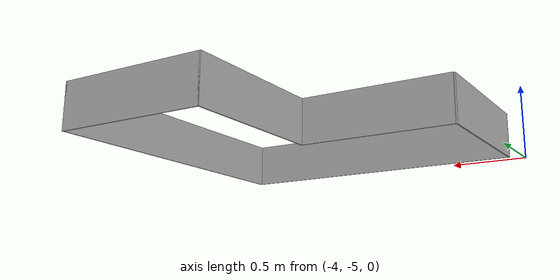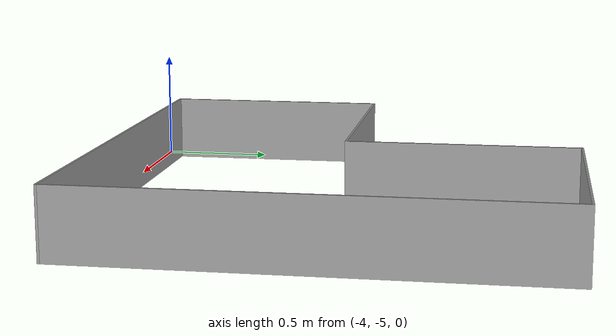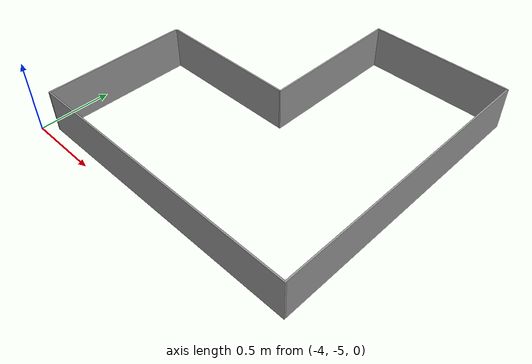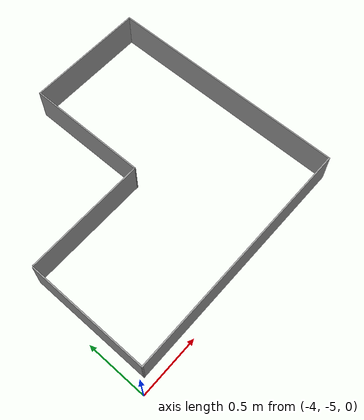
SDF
<?xml version='1.0'?>
<sdf version='1.7'>
  <model name='lwall_rl'>
    <pose>-1.9575 -2.4625 0 0 -0 0</pose>
    <link name='Wall_0'>
      <collision name='Wall_0_Collision'>
        <geometry>
          <box>
            <size>1 0.01 0.3</size>
          </box>
        </geometry>
        <pose>0 0 0.15 0 -0 0</pose>
      </collision>
      <visual name='Wall_0_Visual'>
        <pose>0 0 0.15 0 -0 0</pose>
        <geometry>
          <box>
            <size>1 0.01 0.3</size>
          </box>
        </geometry>
        <material>
          <script>
            <uri>file://media/materials/scripts/gazebo.material</uri>
            <name>Gazebo/Grey</name>
          </script>
          <ambient>1 1 1 1</ambient>
        </material>
        <meta>
          <layer>0</layer>
        </meta>
      </visual>
      <pose>-1.4475 -1.4575 0 0 -0 0</pose>
    </link>
    <link name='Wall_1'>
      <collision name='Wall_1_Collision'>
        <geometry>
          <box>
            <size>1 0.01 0.3</size>
          </box>
        </geometry>
        <pose>0 0 0.15 0 -0 0</pose>
      </collision>
      <visual name='Wall_1_Visual'>
        <pose>0 0 0.15 0 -0 0</pose>
        <geometry>
          <box>
            <size>1 0.01 0.3</size>
          </box>
        </geometry>
        <material>
          <script>
            <uri>file://media/materials/scripts/gazebo.material</uri>
            <name>Gazebo/Grey</name>
          </script>
          <ambient>1 1 1 1</ambient>
        </material>
        <meta>
          <layer>0</layer>
        </meta>
      </visual>
      <pose>-0.9525 -0.9625 0 0 -0 1.5708</pose>
    </link>
    <link name='Wall_3'>
      <collision name='Wall_3_Collision'>
        <geometry>
          <box>
            <size>2 0.01 0.3</size>
          </box>
        </geometry>
        <pose>0 0 0.15 0 -0 0</pose>
      </collision>
      <visual name='Wall_3_Visual'>
        <pose>0 0 0.15 0 -0 0</pose>
        <geometry>
          <box>
            <size>2 0.01 0.3</size>
          </box>
        </geometry>
        <material>
          <script>
            <uri>file://media/materials/scripts/gazebo.material</uri>
            <name>Gazebo/Grey</name>
          </script>
          <ambient>1 1 1 1</ambient>
        </material>
        <meta>
          <layer>0</layer>
        </meta>
      </visual>
      <pose>0.0375 -1.4625 0 0 -0 -1.5708</pose>
    </link>
    <link name='Wall_4'>
      <collision name='Wall_4_Collision'>
        <geometry>
          <box>
            <size>2 0.01 0.3</size>
          </box>
        </geometry>
        <pose>0 0 0.15 0 -0 0</pose>
      </collision>
      <visual name='Wall_4_Visual'>
        <pose>0 0 0.15 0 -0 0</pose>
        <geometry>
          <box>
            <size>2 0.01 0.3</size>
          </box>
        </geometry>
        <material>
          <script>
            <uri>file://media/materials/scripts/gazebo.material</uri>
            <name>Gazebo/Grey</name>
          </script>
          <ambient>1 1 1 1</ambient>
        </material>
        <meta>
          <layer>0</layer>
        </meta>
      </visual>
      <pose>-0.9575 -2.4575 0 0 -0 3.14159</pose>
    </link>
    <link name='Wall_5'>
      <collision name='Wall_5_Collision'>
        <geometry>
          <box>
            <size>1 0.01 0.3</size>
          </box>
        </geometry>
        <pose>0 0 0.15 0 -0 0</pose>
      </collision>
      <visual name='Wall_5_Visual'>
        <pose>0 0 0.15 0 -0 0</pose>
        <geometry>
          <box>
            <size>1 0.01 0.3</size>
          </box>
        </geometry>
        <material>
          <script>
            <uri>file://media/materials/scripts/gazebo.material</uri>
            <name>Gazebo/Grey</name>
          </script>
          <ambient>1 1 1 1</ambient>
        </material>
        <meta>
          <layer>0</layer>
        </meta>
      </visual>
      <pose>-1.9525 -1.9625 0 0 -0 1.5708</pose>
    </link>
    <link name='Wall_7'>
      <collision name='Wall_7_Collision'>
        <geometry>
          <box>
            <size>1 0.01 0.3</size>
          </box>
        </geometry>
        <pose>0 0 0.15 0 -0 0</pose>
      </collision>
      <visual name='Wall_7_Visual'>
        <pose>0 0 0.15 0 -0 0</pose>
        <geometry>
          <box>
            <size>1 0.01 0.3</size>
          </box>
        </geometry>
        <material>
          <script>
            <uri>file://media/materials/scripts/gazebo.material</uri>
            <name>Gazebo/Grey</name>
          </script>
          <ambient>1 1 1 1</ambient>
        </material>
        <meta>
          <layer>0</layer>
        </meta>
      </visual>
      <pose>-0.4575 -0.4675 0 0 -0 0</pose>
    </link>
    <static>1</static>
  </model>
</sdf>
